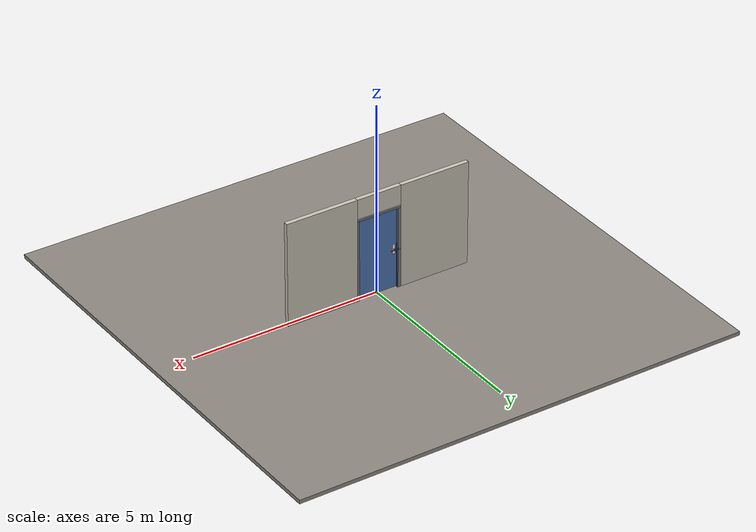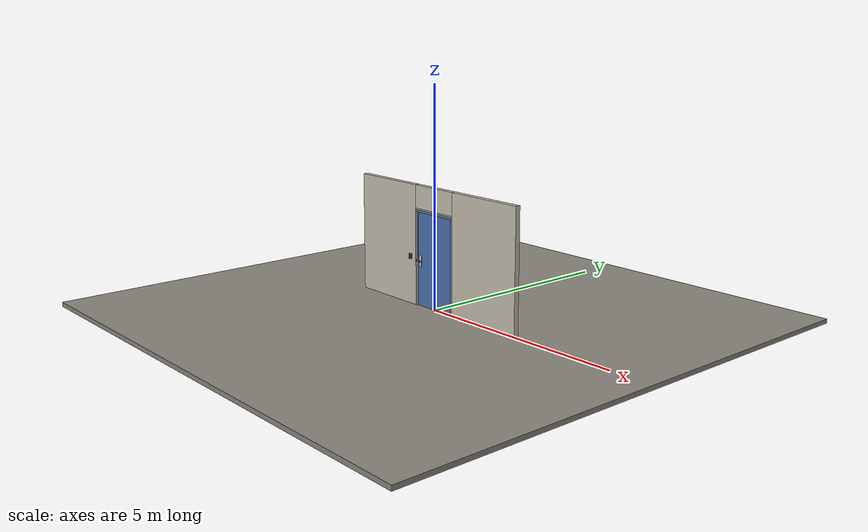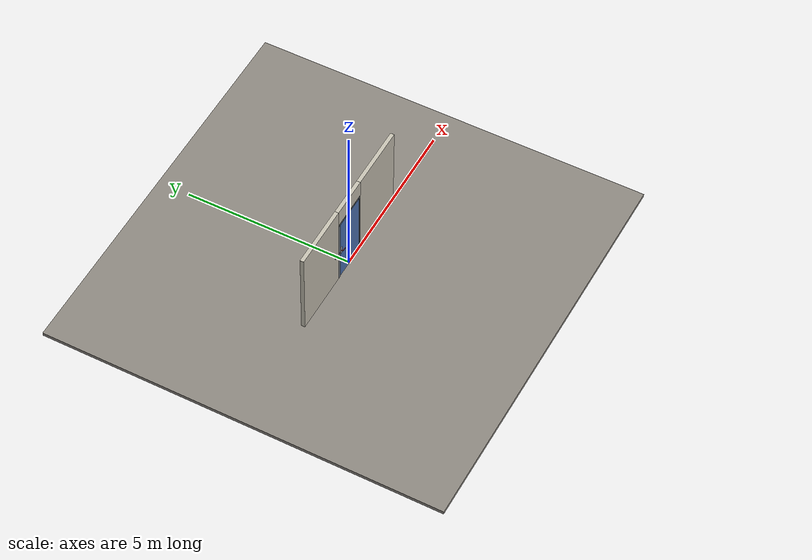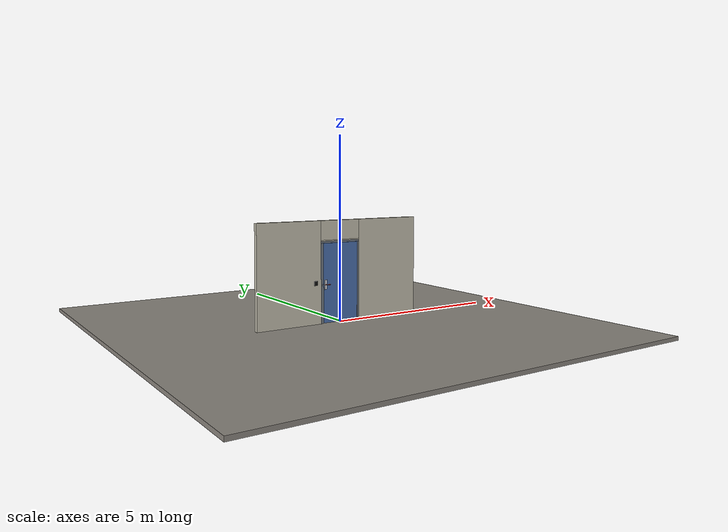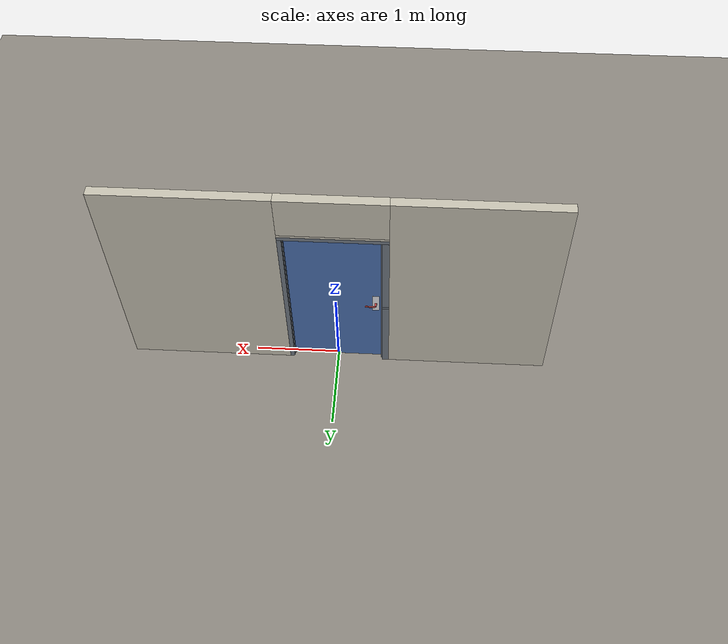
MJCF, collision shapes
<?xml version="1.0" ?>
<mujoco model="db0857_swing_single_full">
  <compiler angle="radian" meshdir="../../hardware" texturedir="../../textures" autolimits="true" inertiafromgeom="false"/>
  <option timestep="0.002" integrator="implicitfast" cone="elliptic" impratio="10" noslip_iterations="3">
    <flag multiccd="enable"/>
  </option>
  <size memory="16M"/>
  <default>
    <geom condim="4" solref="0.005 1" solimp="0.95 0.99 0.001"/>
    <joint solreflimit="0.005 1" solimplimit="0.95 0.99 0.001"/>
    <tendon solreflimit="0.005 1"/>
    <equality solref="0.002 1"/>
  </default>
  <visual>
    <headlight ambient="0.4 0.4 0.4" diffuse="0.7 0.7 0.7" specular="0.2 0.2 0.2"/>
    <quality shadowsize="4096"/>
    <map znear="0.01" zfar="60"/>
  </visual>
  <asset>
    <mesh name="card_reader_38c0bdb077" file="card_reader_38c0bdb077.obj"/>
    <mesh name="hinge_e22b26c0c1" file="hinge_e22b26c0c1.obj"/>
    <mesh name="hinge_jamb_e1d088f8dc" file="hinge_jamb_e1d088f8dc.obj"/>
    <mesh name="lever_56c65af20a" file="lever_56c65af20a.obj"/>
    <material name="mat_floor" rgba="0.55 0.53 0.5 1" specular="0.2" shininess="0.15" reflectance="0"/>
    <material name="mat_wall" rgba="0.78 0.76 0.7 1" specular="0.2" shininess="0.1" reflectance="0"/>
    <material name="mat_leaf" rgba="0.3 0.45 0.7 1" specular="0.2" shininess="0.61" reflectance="0"/>
    <material name="mat_hinge" rgba="0.65 0.66 0.68 1" specular="0.74" shininess="0.5" reflectance="0.36"/>
    <material name="mat_op_chrome" rgba="0.9 0.9 0.92 1" specular="0.8" shininess="0.9" reflectance="0.4"/>
    <material name="mat_trim" rgba="0.85 0.66 0.3 1" specular="0.8" shininess="0.75" reflectance="0.4"/>
    <material name="mat_reader" rgba="0.05 0.05 0.05 1" specular="0.38" shininess="0.3" reflectance="0.12"/>
    <material name="mat_bolt" rgba="0.85 0.66 0.3 1" specular="0.8" shininess="0.75" reflectance="0.4"/>
    <material name="mat_frame" rgba="0.45 0.48 0.52 1" specular="0.32" shininess="0.6" reflectance="0.08"/>
    <material name="mat_wallreader" rgba="0.05 0.05 0.05 1" specular="0.38" shininess="0.3" reflectance="0.12"/>
    <texture name="skybox" type="skybox" builtin="gradient" rgb1="0.6 0.7 0.85" rgb2="0.9 0.92 0.95" width="256" height="256"/>
  </asset>
  <worldbody>
    <light name="sun" pos="1.5 -2.5 4" dir="-0.3 0.5 -0.8" directional="true" diffuse="0.8 0.8 0.8" specular="0.3 0.3 0.3" castshadow="true"/>
    <light name="fill" pos="-1.5 2.5 3" dir="0.3 -0.5 -0.7" directional="true" diffuse="0.35 0.35 0.4" castshadow="false"/>
    <camera name="robot_view" pos="0 -2.609312 1.812087" xyaxes="1 0 0 0 0.26963 0.962964" fovy="52"/>
    <camera name="far_view" pos="0 2.666313 1.812087" xyaxes="-1 0 0 0 -0.26963 0.962964" fovy="52"/>
    <camera name="iso" pos="-2.004737 -2.187262 2.234138" xyaxes="0.741536 -0.670913 0 0.242917 0.268487 0.932151" fovy="46"/>
    <camera name="detail_handle" pos="-0.187 -0.877 1.32" xyaxes="0.97561 0.219512 0 -0.070934 0.315262 0.94635" fovy="38"/>
    <geom name="floor" type="box" size="6 6 0.05" pos="0 0 -0.05" material="mat_floor" group="0" contype="1" conaffinity="1" friction="0.8 0.005 0.0001" density="2400"/>
    <geom name="wall_left" type="box" size="0.9415 0.0575 1.3735" pos="-1.5585 0.0285 1.3735" material="mat_wall" group="0" contype="1" conaffinity="1" friction="0.6 0.005 0.0001" density="800"/>
    <geom name="wall_right" type="box" size="0.9565 0.0575 1.3735" pos="1.5435 0.0285 1.3735" material="mat_wall" group="0" contype="1" conaffinity="1" friction="0.6 0.005 0.0001" density="800"/>
    <geom name="wall_header" type="box" size="0.602 0.0575 0.26" pos="-0.015 0.0285 2.487" material="mat_wall" group="0" contype="1" conaffinity="1" friction="0.6 0.005 0.0001" density="800"/>
    <geom name="hinge_0_jamb" type="mesh" mesh="hinge_jamb_e1d088f8dc" pos="0.534 -0.029 0.259" quat="0 0 1 0" material="mat_hinge" group="1" contype="0" conaffinity="0" density="7850"/>
    <geom name="hinge_1_jamb" type="mesh" mesh="hinge_jamb_e1d088f8dc" pos="0.534 -0.029 1.076" quat="0 0 1 0" material="mat_hinge" group="1" contype="0" conaffinity="0" density="7850"/>
    <geom name="hinge_2_jamb" type="mesh" mesh="hinge_jamb_e1d088f8dc" pos="0.534 -0.029 1.963" quat="0 0 1 0" material="mat_hinge" group="1" contype="0" conaffinity="0" density="7850"/>
    <geom name="jamb_hinge" type="box" size="0.025 0.0575 1.0735" pos="0.562 0.0285 1.0735" material="mat_frame" group="0" contype="1" conaffinity="1" friction="0.6 0.005 0.0001" density="300"/>
    <geom name="strike_1040_wall_n" type="box" size="0.04 0.039075 0.0167" pos="-0.577 0.046925 1.04" material="mat_frame" group="0" contype="1" conaffinity="1" friction="0.6 0.005 0.0001" density="300"/>
    <geom name="strike_1040_wall_p" type="box" size="0.04 0.008 0.0167" pos="-0.577 -0.01585 1.04" material="mat_frame" group="0" contype="1" conaffinity="1" friction="0.6 0.005 0.0001" density="300"/>
    <geom name="strike_1040_ramp" type="box" size="0.04 0.01649 0.0167" pos="-0.580236 -0.022234 1.04" quat="0.977148 0 0 -0.212558" material="mat_frame" group="0" contype="1" conaffinity="1" friction="0.12 0.005 0.0001" density="300"/>
    <geom name="strike_1040_back" type="box" size="0.03165 0.00785 0.0167" pos="-0.58535 0 1.04" material="mat_frame" group="0" contype="1" conaffinity="1" friction="0.6 0.005 0.0001" density="300"/>
    <geom name="jamb_strike_0" type="box" size="0.04 0.0575 0.51165" pos="-0.577 0.0285 0.51165" material="mat_frame" group="0" contype="1" conaffinity="1" friction="0.6 0.005 0.0001" density="300"/>
    <geom name="jamb_strike_1" type="box" size="0.04 0.0575 0.54515" pos="-0.577 0.0285 1.60185" material="mat_frame" group="0" contype="1" conaffinity="1" friction="0.6 0.005 0.0001" density="300"/>
    <geom name="jamb_head" type="box" size="0.602 0.0575 0.025" pos="-0.015 0.0285 2.172" material="mat_frame" group="0" contype="1" conaffinity="1" friction="0.6 0.005 0.0001" density="300"/>
    <geom name="head_stud" type="box" size="0.602 0.0575 0.015" pos="-0.015 0.0285 2.212" material="mat_wall" group="0" contype="1" conaffinity="1" friction="0.6 0.005 0.0001" density="500"/>
    <geom name="stop_hinge" type="box" size="0.0055 0.016 1.0735" pos="0.5315 0.0385 1.0735" material="mat_frame" group="0" contype="1" conaffinity="1" friction="0.6 0.005 0.0001" density="300"/>
    <geom name="stop_strike" type="box" size="0.0055 0.016 1.0735" pos="-0.5315 0.0385 1.0735" material="mat_frame" group="0" contype="1" conaffinity="1" friction="0.6 0.005 0.0001" density="300"/>
    <geom name="stop_head" type="box" size="0.537 0.016 0.0055" pos="0 0.0385 2.1415" material="mat_frame" group="0" contype="1" conaffinity="1" friction="0.6 0.005 0.0001" density="300"/>
    <geom name="wall_reader" type="box" size="0.04 0.015 0.06" pos="-0.787 -0.044 1.1" material="mat_wallreader" group="0" contype="1" conaffinity="1" friction="0.6 0.005 0.0001" density="1000"/>
    <site name="approach_point" pos="0 -1.5 0" quat="1 0 0 0" size="0.05" rgba="0.2 0.9 0.2 0.5" group="4"/>
    <site name="goal_point" pos="0 1.5 0" quat="1 0 0 0" size="0.05" rgba="0.2 0.9 0.2 0.5" group="4"/>
    <site name="door_plane_center" pos="0 0 1.0735" quat="1 0 0 0" size="0.02" rgba="0.2 0.9 0.2 0.5" group="4"/>
    <body name="leaf" pos="0.537 0 0">
      <inertial pos="-0.538651 -0.00056 1.077484" mass="68.269717" quat="-0.499808 0.4994 0.500534 0.500257" diaginertia="6.767392116 25.578569608 32.321718641"/>
      <joint name="leaf_hinge" type="hinge" axis="0 0 1" pos="-0.003 -0.029 0" limited="true" range="0 2.094395" damping="0.54954" frictionloss="0.599598" armature="0.02"/>
      <geom name="leaf_slab" type="box" size="0.5335 0.022 1.067" pos="-0.5365 0 1.076" material="mat_leaf" group="0" contype="1" conaffinity="1" friction="0.4 0.005 0.0001" density="1"/>
      <geom name="hinge_0" type="mesh" mesh="hinge_e22b26c0c1" pos="-0.003 -0.029 0.259" quat="0 0 1 0" material="mat_hinge" group="1" contype="0" conaffinity="0" density="7850"/>
      <geom name="hinge_1" type="mesh" mesh="hinge_e22b26c0c1" pos="-0.003 -0.029 1.076" quat="0 0 1 0" material="mat_hinge" group="1" contype="0" conaffinity="0" density="7850"/>
      <geom name="hinge_2" type="mesh" mesh="hinge_e22b26c0c1" pos="-0.003 -0.029 1.963" quat="0 0 1 0" material="mat_hinge" group="1" contype="0" conaffinity="0" density="7850"/>
      <geom name="leaf_handle_escutcheon_n" type="box" size="0.0375 0.0015 0.13" pos="-1 -0.0235 1.04" material="mat_op_chrome" group="1" contype="0" conaffinity="0" density="3000"/>
      <geom name="leaf_handle_escutcheon_p" type="box" size="0.0375 0.0015 0.13" pos="-1 0.0235 1.04" material="mat_op_chrome" group="1" contype="0" conaffinity="0" density="3000"/>
      <geom name="leaf_handle_reader" type="mesh" mesh="card_reader_38c0bdb077" pos="-1 -0.022 1.2" quat="0.707107 0.707107 0 0" material="mat_reader" group="1" contype="0" conaffinity="0" density="2000"/>
      <geom name="leaf_latch_bolt_faceplate" type="box" size="0.0006 0.01235 0.0267" pos="-1.0694 0 1.04" material="mat_bolt" group="1" contype="0" conaffinity="0" density="8500"/>
      <site name="leaf_edge_mid" pos="-1.07 0 1.067" quat="1 0 0 0" size="0.02" rgba="0.2 0.9 0.2 0.5" group="4"/>
      <body name="leaf_handle" pos="-1 0 1.04">
        <inertial pos="0.034904 0 0" mass="0.739068" quat="0.707107 0 0 -0.707107" diaginertia="0.001260094 0.003272501 0.004494637"/>
        <joint name="leaf_handle_hinge" type="hinge" axis="0 1 0" limited="true" range="0 0.87" damping="0.231314" frictionloss="0.06" stiffness="1.1" springref="-0.454545" armature="0.01"/>
        <geom name="leaf_handle_spindle" type="cylinder" size="0.006 0.034" pos="0 0 0" quat="0.707107 -0.707107 0 0" material="mat_op_chrome" group="1" contype="0" conaffinity="0" density="7850"/>
        <geom name="leaf_handle_lever_n" type="mesh" mesh="lever_56c65af20a" pos="0 -0.022 0" quat="0 0 -0.707107 0.707107" material="mat_op_chrome" group="1" contype="0" conaffinity="0" density="3000"/>
        <geom name="leaf_handle_lever_col_n" type="capsule" size="0.0095 0.0505" pos="0.06 -0.077 0" quat="0.707107 0 0.707107 0" material="mat_op_chrome" group="3" contype="1" conaffinity="1" rgba="0.8 0.3 0.3 0.25" friction="0.7 0.01 0.0001" density="3000"/>
        <geom name="leaf_handle_hub_col_n" type="cylinder" size="0.012 0.022" pos="0 -0.052 0" quat="0.707107 -0.707107 0 0" material="mat_op_chrome" group="3" contype="1" conaffinity="1" rgba="0.8 0.3 0.3 0.25" friction="0.6 0.005 0.0001" density="3000"/>
        <geom name="leaf_handle_lever_p" type="mesh" mesh="lever_56c65af20a" pos="0 0.022 0" quat="0 0 0.707107 0.707107" material="mat_op_chrome" group="1" contype="0" conaffinity="0" density="3000"/>
        <geom name="leaf_handle_lever_col_p" type="capsule" size="0.0095 0.0505" pos="0.06 0.077 0" quat="0.707107 0 0.707107 0" material="mat_op_chrome" group="3" contype="1" conaffinity="1" rgba="0.8 0.3 0.3 0.25" friction="0.7 0.01 0.0001" density="3000"/>
        <geom name="leaf_handle_hub_col_p" type="cylinder" size="0.012 0.022" pos="0 0.052 0" quat="0.707107 -0.707107 0 0" material="mat_op_chrome" group="3" contype="1" conaffinity="1" rgba="0.8 0.3 0.3 0.25" friction="0.6 0.005 0.0001" density="3000"/>
        <site name="leaf_handle_grip_n" pos="0.096 -0.077 0" quat="1 0 0 0" size="0.012" rgba="0.2 0.9 0.2 0.5" group="4"/>
        <site name="leaf_handle_grip_p" pos="0.096 0.077 0" quat="1 0 0 0" size="0.012" rgba="0.2 0.9 0.2 0.5" group="4"/>
      </body>
      <body name="leaf_latch_bolt" pos="-1.07 0 1.04">
        <inertial pos="0.00865 0 0" mass="0.041419" quat="0.92388 0.382683 0 0" diaginertia="0.000000798 0.000005598 0.000005598"/>
        <joint name="leaf_latch_bolt_slide" type="slide" axis="1 0 0" limited="true" range="0 0.0127" damping="2" frictionloss="0.3" stiffness="300" springref="-0.008333" armature="0.1"/>
        <geom name="leaf_latch_bolt_capsule" type="capsule" size="0.00635 0.015" pos="0.00865 0 0" quat="0.707107 0 -0.707107 0" material="mat_bolt" group="0" contype="1" conaffinity="1" friction="0.2 0.005 0.0001" density="8500"/>
      </body>
    </body>
  </worldbody>
  <tendon>
    <fixed name="leaf_latch_bolt_coupling" limited="true" range="0 10">
      <joint joint="leaf_latch_bolt_slide" coef="1"/>
      <joint joint="leaf_handle_hinge" coef="-0.015679"/>
    </fixed>
  </tendon>
  <sensor>
    <jointpos name="leaf_hinge_pos" joint="leaf_hinge"/>
    <jointvel name="leaf_hinge_vel" joint="leaf_hinge"/>
    <jointpos name="leaf_handle_hinge_pos" joint="leaf_handle_hinge"/>
    <jointvel name="leaf_handle_hinge_vel" joint="leaf_handle_hinge"/>
    <jointpos name="leaf_latch_bolt_slide_pos" joint="leaf_latch_bolt_slide"/>
    <jointvel name="leaf_latch_bolt_slide_vel" joint="leaf_latch_bolt_slide"/>
  </sensor>
</mujoco>
